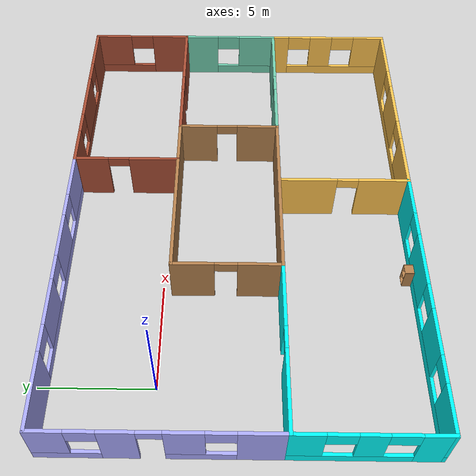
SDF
<sdf version="1.6">
 <world name="default">
  <model name="ground_plane">
   <static>1</static>
   <link name="link">
    <collision name="collision">
     <geometry><plane><normal>0 0 1</normal><size>100 100</size></plane></geometry>
     <surface><friction><ode><mu>100</mu><mu2>50</mu2></ode></friction></surface>
    </collision>
    <visual name="visual">
     <cast_shadows>0</cast_shadows>
     <geometry><plane><normal>0 0 1</normal><size>100 100</size></plane></geometry>
     <material>
      <script><uri>file://media/materials/scripts/gazebo.material</uri><name>Gazebo/Grey</name></script>
     </material>
    </visual>
   </link>
  </model>
  <model name="prj1_building">
   <pose>8.66676 -3.41267 0 0 -0 0</pose>
   <link name="Wall_0">
    <collision name="Wall_0_Collision">
     <geometry><box><size>8.5 0.15 2.5</size></box></geometry>
     <pose>0 0 1.25 0 -0 0</pose>
    </collision>
    <visual name="Wall_0_Visual">
     <pose>0 0 1.25 0 -0 0</pose>
     <geometry><box><size>8.5 0.15 2.5</size></box></geometry>
     <material>
      <script><uri>file://media/materials/scripts/gazebo.material</uri><name>Gazebo/Wood</name></script>
      <ambient>1 1 1 1</ambient>
     </material>
     <meta><layer>0</layer></meta>
    </visual>
    <pose>0.2 -1.875 0 0 -0 0</pose>
   </link>
   <link name="Wall_13">
    <pose>11.475 5.46466 0 0 -0 1.5708</pose>
    <visual name="Wall_13_Visual_0">
     <pose>-1.56923 0 1.25 0 -0 0</pose>
     <geometry><box><size>1.99086 0.15 2.5</size></box></geometry>
     <material>
      <script><uri>file://media/materials/scripts/gazebo.material</uri><name>Gazebo/Bricks</name></script>
      <ambient>1 1 1 1</ambient>
     </material>
     <meta><layer>0</layer></meta>
    </visual>
    <collision name="Wall_13_Collision_0">
     <geometry><box><size>1.99086 0.15 2.5</size></box></geometry>
     <pose>-1.56923 0 1.25 0 -0 0</pose>
    </collision>
    <visual name="Wall_13_Visual_1">
     <pose>0.995431 0 0.25 0 -0 0</pose>
     <geometry><box><size>3.13846 0.15 0.5</size></box></geometry>
     <material>
      <script><uri>file://media/materials/scripts/gazebo.material</uri><name>Gazebo/Bricks</name></script>
      <ambient>1 1 1 1</ambient>
     </material>
     <meta><layer>0</layer></meta>
    </visual>
    <collision name="Wall_13_Collision_1">
     <geometry><box><size>3.13846 0.15 0.5</size></box></geometry>
     <pose>0.995431 0 0.25 0 -0 0</pose>
    </collision>
    <visual name="Wall_13_Visual_2">
     <pose>1.59543 0 1.5 0 -0 0</pose>
     <geometry><box><size>1.93846 0.15 2</size></box></geometry>
     <material>
      <script><uri>file://media/materials/scripts/gazebo.material</uri><name>Gazebo/Bricks</name></script>
      <ambient>1 1 1 1</ambient>
     </material>
     <meta><layer>0</layer></meta>
    </visual>
    <collision name="Wall_13_Collision_2">
     <geometry><box><size>1.93846 0.15 2</size></box></geometry>
     <pose>1.59543 0 1.5 0 -0 0</pose>
    </collision>
    <visual name="Wall_13_Visual_3">
     <pose>0.026202 0 2.1 0 -0 0</pose>
     <geometry><box><size>1.2 0.15 0.8</size></box></geometry>
     <material>
      <script><uri>file://media/materials/scripts/gazebo.material</uri><name>Gazebo/Bricks</name></script>
      <ambient>1 1 1 1</ambient>
     </material>
     <meta><layer>0</layer></meta>
    </visual>
    <collision name="Wall_13_Collision_3">
     <geometry><box><size>1.2 0.15 0.8</size></box></geometry>
     <pose>0.026202 0 2.1 0 -0 0</pose>
    </collision>
   </link>
   <link name="Wall_14">
    <pose>6.8 7.97443 0 0 -0 3.14159</pose>
    <visual name="Wall_14_Visual_0">
     <pose>-3.50992 0 1.25 0 -0 0</pose>
     <geometry><box><size>2.48016 0.15 2.5</size></box></geometry>
     <material>
      <script><uri>file://media/materials/scripts/gazebo.material</uri><name>Gazebo/Bricks</name></script>
      <ambient>1 1 1 1</ambient>
     </material>
     <meta><layer>0</layer></meta>
    </visual>
    <collision name="Wall_14_Collision_0">
     <geometry><box><size>2.48016 0.15 2.5</size></box></geometry>
     <pose>-3.50992 0 1.25 0 -0 0</pose>
    </collision>
    <visual name="Wall_14_Visual_1">
     <pose>1.24008 0 0.25 0 -0 0</pose>
     <geometry><box><size>7.01984 0.15 0.5</size></box></geometry>
     <material>
      <script><uri>file://media/materials/scripts/gazebo.material</uri><name>Gazebo/Bricks</name></script>
      <ambient>1 1 1 1</ambient>
     </material>
     <meta><layer>0</layer></meta>
    </visual>
    <collision name="Wall_14_Collision_1">
     <geometry><box><size>7.01984 0.15 0.5</size></box></geometry>
     <pose>1.24008 0 0.25 0 -0 0</pose>
    </collision>
    <visual name="Wall_14_Visual_2">
     <pose>0.282584 0 1.5 0 -0 0</pose>
     <geometry><box><size>2.70484 0.15 2</size></box></geometry>
     <material>
      <script><uri>file://media/materials/scripts/gazebo.material</uri><name>Gazebo/Bricks</name></script>
      <ambient>1 1 1 1</ambient>
     </material>
     <meta><layer>0</layer></meta>
    </visual>
    <collision name="Wall_14_Collision_2">
     <geometry><box><size>2.70484 0.15 2</size></box></geometry>
     <pose>0.282584 0 1.5 0 -0 0</pose>
    </collision>
    <visual name="Wall_14_Visual_3">
     <pose>3.7925 0 1.5 0 -0 0</pose>
     <geometry><box><size>1.915 0.15 2</size></box></geometry>
     <material>
      <script><uri>file://media/materials/scripts/gazebo.material</uri><name>Gazebo/Bricks</name></script>
      <ambient>1 1 1 1</ambient>
     </material>
     <meta><layer>0</layer></meta>
    </visual>
    <collision name="Wall_14_Collision_3">
     <geometry><box><size>1.915 0.15 2</size></box></geometry>
     <pose>3.7925 0 1.5 0 -0 0</pose>
    </collision>
    <visual name="Wall_14_Visual_4">
     <pose>-1.66984 0 2.1 0 -0 0</pose>
     <geometry><box><size>1.2 0.15 0.8</size></box></geometry>
     <material>
      <script><uri>file://media/materials/scripts/gazebo.material</uri><name>Gazebo/Bricks</name></script>
      <ambient>1 1 1 1</ambient>
     </material>
     <meta><layer>0</layer></meta>
    </visual>
    <collision name="Wall_14_Collision_4">
     <geometry><box><size>1.2 0.15 0.8</size></box></geometry>
     <pose>-1.66984 0 2.1 0 -0 0</pose>
    </collision>
    <visual name="Wall_14_Visual_5">
     <pose>2.23501 0 2.1 0 -0 0</pose>
     <geometry><box><size>1.2 0.15 0.8</size></box></geometry>
     <material>
      <script><uri>file://media/materials/scripts/gazebo.material</uri><name>Gazebo/Bricks</name></script>
      <ambient>1 1 1 1</ambient>
     </material>
     <meta><layer>0</layer></meta>
    </visual>
    <collision name="Wall_14_Collision_5">
     <geometry><box><size>1.2 0.15 0.8</size></box></geometry>
     <pose>2.23501 0 2.1 0 -0 0</pose>
    </collision>
   </link>
   <link name="Wall_15">
    <pose>2.125 5.46466 0 0 -0 -1.5708</pose>
    <visual name="Wall_15_Visual_0">
     <pose>-1.72519 0 1.25 0 -0 0</pose>
     <geometry><box><size>1.67895 0.15 2.5</size></box></geometry>
     <material>
      <script><uri>file://media/materials/scripts/gazebo.material</uri><name>Gazebo/Bricks</name></script>
      <ambient>1 1 1 1</ambient>
     </material>
     <meta><layer>0</layer></meta>
    </visual>
    <collision name="Wall_15_Collision_0">
     <geometry><box><size>1.67895 0.15 2.5</size></box></geometry>
     <pose>-1.72519 0 1.25 0 -0 0</pose>
    </collision>
    <visual name="Wall_15_Visual_1">
     <pose>1.33947 0 1.25 0 -0 0</pose>
     <geometry><box><size>2.45037 0.15 2.5</size></box></geometry>
     <material>
      <script><uri>file://media/materials/scripts/gazebo.material</uri><name>Gazebo/Bricks</name></script>
      <ambient>1 1 1 1</ambient>
     </material>
     <meta><layer>0</layer></meta>
    </visual>
    <collision name="Wall_15_Collision_1">
     <geometry><box><size>2.45037 0.15 2.5</size></box></geometry>
     <pose>1.33947 0 1.25 0 -0 0</pose>
    </collision>
    <visual name="Wall_15_Visual_2">
     <pose>-0.385714 0 2.25 0 -0 0</pose>
     <geometry><box><size>1 0.15 0.5</size></box></geometry>
     <material>
      <script><uri>file://media/materials/scripts/gazebo.material</uri><name>Gazebo/Bricks</name></script>
      <ambient>1 1 1 1</ambient>
     </material>
     <meta><layer>0</layer></meta>
    </visual>
    <collision name="Wall_15_Collision_2">
     <geometry><box><size>1 0.15 0.5</size></box></geometry>
     <pose>-0.385714 0 2.25 0 -0 0</pose>
    </collision>
   </link>
   <link name="Wall_2">
    <pose>-3.975 0.55 0 0 -0 1.5708</pose>
    <visual name="Wall_2_Visual_0">
     <pose>-1.47865 0 1.25 0 -0 0</pose>
     <geometry><box><size>2.0427 0.15 2.5</size></box></geometry>
     <material>
      <script><uri>file://media/materials/scripts/gazebo.material</uri><name>Gazebo/Wood</name></script>
      <ambient>1 1 1 1</ambient>
     </material>
     <meta><layer>0</layer></meta>
    </visual>
    <collision name="Wall_2_Collision_0">
     <geometry><box><size>2.0427 0.15 2.5</size></box></geometry>
     <pose>-1.47865 0 1.25 0 -0 0</pose>
    </collision>
    <visual name="Wall_2_Visual_1">
     <pose>1.52135 0 1.25 0 -0 0</pose>
     <geometry><box><size>1.9573 0.15 2.5</size></box></geometry>
     <material>
      <script><uri>file://media/materials/scripts/gazebo.material</uri><name>Gazebo/Wood</name></script>
      <ambient>1 1 1 1</ambient>
     </material>
     <meta><layer>0</layer></meta>
    </visual>
    <collision name="Wall_2_Collision_1">
     <geometry><box><size>1.9573 0.15 2.5</size></box></geometry>
     <pose>1.52135 0 1.25 0 -0 0</pose>
    </collision>
    <visual name="Wall_2_Visual_2">
     <pose>0.042704 0 2.25 0 -0 0</pose>
     <geometry><box><size>1 0.15 0.5</size></box></geometry>
     <material>
      <script><uri>file://media/materials/scripts/gazebo.material</uri><name>Gazebo/Wood</name></script>
      <ambient>1 1 1 1</ambient>
     </material>
     <meta><layer>0</layer></meta>
    </visual>
    <collision name="Wall_2_Collision_2">
     <geometry><box><size>1 0.15 0.5</size></box></geometry>
     <pose>0.042704 0 2.25 0 -0 0</pose>
    </collision>
   </link>
   <link name="Wall_25">
    <pose>11.475 0.55 0 0 -0 -1.5708</pose>
    <visual name="Wall_25_Visual_0">
     <pose>-1.58607 0 1.25 0 -0 0</pose>
     <geometry><box><size>1.82787 0.15 2.5</size></box></geometry>
     <material>
      <script><uri>file://media/materials/scripts/gazebo.material</uri><name>Gazebo/Grey</name></script>
      <ambient>0.435294 0.796078 0.67451 1</ambient>
     </material>
     <meta><layer>0</layer></meta>
    </visual>
    <collision name="Wall_25_Collision_0">
     <geometry><box><size>1.82787 0.15 2.5</size></box></geometry>
     <pose>-1.58607 0 1.25 0 -0 0</pose>
    </collision>
    <visual name="Wall_25_Visual_1">
     <pose>0.913933 0 0.25 0 -0 0</pose>
     <geometry><box><size>3.17213 0.15 0.5</size></box></geometry>
     <material>
      <script><uri>file://media/materials/scripts/gazebo.material</uri><name>Gazebo/Grey</name></script>
      <ambient>0.435294 0.796078 0.67451 1</ambient>
     </material>
     <meta><layer>0</layer></meta>
    </visual>
    <collision name="Wall_25_Collision_1">
     <geometry><box><size>3.17213 0.15 0.5</size></box></geometry>
     <pose>0.913933 0 0.25 0 -0 0</pose>
    </collision>
    <visual name="Wall_25_Visual_2">
     <pose>1.51393 0 1.5 0 -0 0</pose>
     <geometry><box><size>1.97213 0.15 2</size></box></geometry>
     <material>
      <script><uri>file://media/materials/scripts/gazebo.material</uri><name>Gazebo/Grey</name></script>
      <ambient>0.435294 0.796078 0.67451 1</ambient>
     </material>
     <meta><layer>0</layer></meta>
    </visual>
    <collision name="Wall_25_Collision_2">
     <geometry><box><size>1.97213 0.15 2</size></box></geometry>
     <pose>1.51393 0 1.5 0 -0 0</pose>
    </collision>
    <visual name="Wall_25_Visual_3">
     <pose>-0.072133 0 2.1 0 -0 0</pose>
     <geometry><box><size>1.2 0.15 0.8</size></box></geometry>
     <material>
      <script><uri>file://media/materials/scripts/gazebo.material</uri><name>Gazebo/Grey</name></script>
      <ambient>0.435294 0.796078 0.67451 1</ambient>
     </material>
     <meta><layer>0</layer></meta>
    </visual>
    <collision name="Wall_25_Collision_3">
     <geometry><box><size>1.2 0.15 0.8</size></box></geometry>
     <pose>-0.072133 0 2.1 0 -0 0</pose>
    </collision>
   </link>
   <link name="Wall_26">
    <pose>7.925 -1.875 0 0 -0 3.14159</pose>
    <visual name="Wall_26_Visual_0">
     <pose>-1.93285 0 1.25 0 -0 0</pose>
     <geometry><box><size>3.3843 0.15 2.5</size></box></geometry>
     <material>
      <script><uri>file://media/materials/scripts/gazebo.material</uri><name>Gazebo/Grey</name></script>
      <ambient>0.435294 0.796078 0.67451 1</ambient>
     </material>
     <meta><layer>0</layer></meta>
    </visual>
    <collision name="Wall_26_Collision_0">
     <geometry><box><size>3.3843 0.15 2.5</size></box></geometry>
     <pose>-1.93285 0 1.25 0 -0 0</pose>
    </collision>
    <visual name="Wall_26_Visual_1">
     <pose>2.19215 0 1.25 0 -0 0</pose>
     <geometry><box><size>2.8657 0.15 2.5</size></box></geometry>
     <material>
      <script><uri>file://media/materials/scripts/gazebo.material</uri><name>Gazebo/Grey</name></script>
      <ambient>0.435294 0.796078 0.67451 1</ambient>
     </material>
     <meta><layer>0</layer></meta>
    </visual>
    <collision name="Wall_26_Collision_1">
     <geometry><box><size>2.8657 0.15 2.5</size></box></geometry>
     <pose>2.19215 0 1.25 0 -0 0</pose>
    </collision>
    <visual name="Wall_26_Visual_2">
     <pose>0.259305 0 2.25 0 -0 0</pose>
     <geometry><box><size>1 0.15 0.5</size></box></geometry>
     <material>
      <script><uri>file://media/materials/scripts/gazebo.material</uri><name>Gazebo/Grey</name></script>
      <ambient>0.435294 0.796078 0.67451 1</ambient>
     </material>
     <meta><layer>0</layer></meta>
    </visual>
    <collision name="Wall_26_Collision_2">
     <geometry><box><size>1 0.15 0.5</size></box></geometry>
     <pose>0.259305 0 2.25 0 -0 0</pose>
    </collision>
   </link>
   <link name="Wall_28">
    <pose>11.475 -4.925 0 0 -0 -1.5708</pose>
    <visual name="Wall_28_Visual_0">
     <pose>-2.63878 0 1.25 0 -0 0</pose>
     <geometry><box><size>0.972448 0.15 2.5</size></box></geometry>
     <material>
      <script><uri>file://media/materials/scripts/gazebo.material</uri><name>Gazebo/Grey</name></script>
      <ambient>1 0.764706 0.305882 1</ambient>
     </material>
     <meta><layer>0</layer></meta>
    </visual>
    <collision name="Wall_28_Collision_0">
     <geometry><box><size>0.972448 0.15 2.5</size></box></geometry>
     <pose>-2.63878 0 1.25 0 -0 0</pose>
    </collision>
    <visual name="Wall_28_Visual_1">
     <pose>0.486224 0 0.25 0 -0 0</pose>
     <geometry><box><size>5.27755 0.15 0.5</size></box></geometry>
     <material>
      <script><uri>file://media/materials/scripts/gazebo.material</uri><name>Gazebo/Grey</name></script>
      <ambient>1 0.764706 0.305882 1</ambient>
     </material>
     <meta><layer>0</layer></meta>
    </visual>
    <collision name="Wall_28_Collision_1">
     <geometry><box><size>5.27755 0.15 0.5</size></box></geometry>
     <pose>0.486224 0 0.25 0 -0 0</pose>
    </collision>
    <visual name="Wall_28_Visual_2">
     <pose>-0.344238 0 1.5 0 -0 0</pose>
     <geometry><box><size>1.21663 0.15 2</size></box></geometry>
     <material>
      <script><uri>file://media/materials/scripts/gazebo.material</uri><name>Gazebo/Grey</name></script>
      <ambient>1 0.764706 0.305882 1</ambient>
     </material>
     <meta><layer>0</layer></meta>
    </visual>
    <collision name="Wall_28_Collision_2">
     <geometry><box><size>1.21663 0.15 2</size></box></geometry>
     <pose>-0.344238 0 1.5 0 -0 0</pose>
    </collision>
    <visual name="Wall_28_Visual_3">
     <pose>2.29454 0 1.5 0 -0 0</pose>
     <geometry><box><size>1.66092 0.15 2</size></box></geometry>
     <material>
      <script><uri>file://media/materials/scripts/gazebo.material</uri><name>Gazebo/Grey</name></script>
      <ambient>1 0.764706 0.305882 1</ambient>
     </material>
     <meta><layer>0</layer></meta>
    </visual>
    <collision name="Wall_28_Collision_3">
     <geometry><box><size>1.66092 0.15 2</size></box></geometry>
     <pose>2.29454 0 1.5 0 -0 0</pose>
    </collision>
    <visual name="Wall_28_Visual_4">
     <pose>-1.55255 0 2.1 0 -0 0</pose>
     <geometry><box><size>1.2 0.15 0.8</size></box></geometry>
     <material>
      <script><uri>file://media/materials/scripts/gazebo.material</uri><name>Gazebo/Grey</name></script>
      <ambient>1 0.764706 0.305882 1</ambient>
     </material>
     <meta><layer>0</layer></meta>
    </visual>
    <collision name="Wall_28_Collision_4">
     <geometry><box><size>1.2 0.15 0.8</size></box></geometry>
     <pose>-1.55255 0 2.1 0 -0 0</pose>
    </collision>
    <visual name="Wall_28_Visual_5">
     <pose>0.864076 0 2.1 0 -0 0</pose>
     <geometry><box><size>1.2 0.15 0.8</size></box></geometry>
     <material>
      <script><uri>file://media/materials/scripts/gazebo.material</uri><name>Gazebo/Grey</name></script>
      <ambient>1 0.764706 0.305882 1</ambient>
     </material>
     <meta><layer>0</layer></meta>
    </visual>
    <collision name="Wall_28_Collision_5">
     <geometry><box><size>1.2 0.15 0.8</size></box></geometry>
     <pose>0.864076 0 2.1 0 -0 0</pose>
    </collision>
   </link>
   <link name="Wall_34">
    <pose>6.175 -7.975 0 0 -0 3.14159</pose>
    <visual name="Wall_34_Visual_0">
     <pose>-3.92525 0 1.25 0 -0 0</pose>
     <geometry><box><size>2.89949 0.15 2.5</size></box></geometry>
     <material>
      <script><uri>file://media/materials/scripts/gazebo.material</uri><name>Gazebo/Grey</name></script>
      <ambient>1 0.764706 0.305882 1</ambient>
     </material>
     <meta><layer>0</layer></meta>
    </visual>
    <collision name="Wall_34_Collision_0">
     <geometry><box><size>2.89949 0.15 2.5</size></box></geometry>
     <pose>-3.92525 0 1.25 0 -0 0</pose>
    </collision>
    <visual name="Wall_34_Visual_1">
     <pose>1.44975 0 0.25 0 -0 0</pose>
     <geometry><box><size>7.85051 0.15 0.5</size></box></geometry>
     <material>
      <script><uri>file://media/materials/scripts/gazebo.material</uri><name>Gazebo/Grey</name></script>
      <ambient>1 0.764706 0.305882 1</ambient>
     </material>
     <meta><layer>0</layer></meta>
    </visual>
    <collision name="Wall_34_Collision_1">
     <geometry><box><size>7.85051 0.15 0.5</size></box></geometry>
     <pose>1.44975 0 0.25 0 -0 0</pose>
    </collision>
    <visual name="Wall_34_Visual_2">
     <pose>0.023833 0 1.5 0 -0 0</pose>
     <geometry><box><size>2.59868 0.15 2</size></box></geometry>
     <material>
      <script><uri>file://media/materials/scripts/gazebo.material</uri><name>Gazebo/Grey</name></script>
      <ambient>1 0.764706 0.305882 1</ambient>
     </material>
     <meta><layer>0</layer></meta>
    </visual>
    <collision name="Wall_34_Collision_2">
     <geometry><box><size>2.59868 0.15 2</size></box></geometry>
     <pose>0.023833 0 1.5 0 -0 0</pose>
    </collision>
    <visual name="Wall_34_Visual_3">
     <pose>3.94909 0 1.5 0 -0 0</pose>
     <geometry><box><size>2.85183 0.15 2</size></box></geometry>
     <material>
      <script><uri>file://media/materials/scripts/gazebo.material</uri><name>Gazebo/Grey</name></script>
      <ambient>1 0.764706 0.305882 1</ambient>
     </material>
     <meta><layer>0</layer></meta>
    </visual>
    <collision name="Wall_34_Collision_3">
     <geometry><box><size>2.85183 0.15 2</size></box></geometry>
     <pose>3.94909 0 1.5 0 -0 0</pose>
    </collision>
    <visual name="Wall_34_Visual_4">
     <pose>-1.8755 0 2.1 0 -0 0</pose>
     <geometry><box><size>1.2 0.15 0.8</size></box></geometry>
     <material>
      <script><uri>file://media/materials/scripts/gazebo.material</uri><name>Gazebo/Grey</name></script>
      <ambient>1 0.764706 0.305882 1</ambient>
     </material>
     <meta><layer>0</layer></meta>
    </visual>
    <collision name="Wall_34_Collision_4">
     <geometry><box><size>1.2 0.15 0.8</size></box></geometry>
     <pose>-1.8755 0 2.1 0 -0 0</pose>
    </collision>
    <visual name="Wall_34_Visual_5">
     <pose>1.92317 0 2.1 0 -0 0</pose>
     <geometry><box><size>1.2 0.15 0.8</size></box></geometry>
     <material>
      <script><uri>file://media/materials/scripts/gazebo.material</uri><name>Gazebo/Grey</name></script>
      <ambient>1 0.764706 0.305882 1</ambient>
     </material>
     <meta><layer>0</layer></meta>
    </visual>
    <collision name="Wall_34_Collision_5">
     <geometry><box><size>1.2 0.15 0.8</size></box></geometry>
     <pose>1.92317 0 2.1 0 -0 0</pose>
    </collision>
   </link>
   <link name="Wall_35">
    <pose>0.875 -4.925 0 0 -0 1.5708</pose>
    <visual name="Wall_35_Visual_0">
     <pose>-1.90603 0 1.25 0 -0 0</pose>
     <geometry><box><size>2.43795 0.15 2.5</size></box></geometry>
     <material>
      <script><uri>file://media/materials/scripts/gazebo.material</uri><name>Gazebo/Grey</name></script>
      <ambient>1 0.764706 0.305882 1</ambient>
     </material>
     <meta><layer>0</layer></meta>
    </visual>
    <collision name="Wall_35_Collision_0">
     <geometry><box><size>2.43795 0.15 2.5</size></box></geometry>
     <pose>-1.90603 0 1.25 0 -0 0</pose>
    </collision>
    <visual name="Wall_35_Visual_1">
     <pose>1.71897 0 1.25 0 -0 0</pose>
     <geometry><box><size>2.81205 0.15 2.5</size></box></geometry>
     <material>
      <script><uri>file://media/materials/scripts/gazebo.material</uri><name>Gazebo/Grey</name></script>
      <ambient>1 0.764706 0.305882 1</ambient>
     </material>
     <meta><layer>0</layer></meta>
    </visual>
    <collision name="Wall_35_Collision_1">
     <geometry><box><size>2.81205 0.15 2.5</size></box></geometry>
     <pose>1.71897 0 1.25 0 -0 0</pose>
    </collision>
    <visual name="Wall_35_Visual_2">
     <pose>-0.187052 0 2.25 0 -0 0</pose>
     <geometry><box><size>1 0.15 0.5</size></box></geometry>
     <material>
      <script><uri>file://media/materials/scripts/gazebo.material</uri><name>Gazebo/Grey</name></script>
      <ambient>1 0.764706 0.305882 1</ambient>
     </material>
     <meta><layer>0</layer></meta>
    </visual>
    <collision name="Wall_35_Collision_2">
     <geometry><box><size>1 0.15 0.5</size></box></geometry>
     <pose>-0.187052 0 2.25 0 -0 0</pose>
    </collision>
   </link>
   <link name="Wall_37">
    <pose>-5.3 -7.975 0 0 -0 3.14159</pose>
    <visual name="Wall_37_Visual_0">
     <pose>-5.23153 0 1.25 0 -0 0</pose>
     <geometry><box><size>2.03695 0.15 2.5</size></box></geometry>
     <material>
      <script><uri>file://media/materials/scripts/gazebo.material</uri><name>Gazebo/Grey</name></script>
      <ambient>0 1 1 1</ambient>
     </material>
     <meta><layer>0</layer></meta>
    </visual>
    <collision name="Wall_37_Collision_0">
     <geometry><box><size>2.03695 0.15 2.5</size></box></geometry>
     <pose>-5.23153 0 1.25 0 -0 0</pose>
    </collision>
    <visual name="Wall_37_Visual_1">
     <pose>1.01848 0 0.25 0 -0 0</pose>
     <geometry><box><size>10.4631 0.15 0.5</size></box></geometry>
     <material>
      <script><uri>file://media/materials/scripts/gazebo.material</uri><name>Gazebo/Grey</name></script>
      <ambient>0 1 1 1</ambient>
     </material>
     <meta><layer>0</layer></meta>
    </visual>
    <collision name="Wall_37_Collision_1">
     <geometry><box><size>10.4631 0.15 0.5</size></box></geometry>
     <pose>1.01848 0 0.25 0 -0 0</pose>
    </collision>
    <visual name="Wall_37_Visual_2">
     <pose>-1.71371 0 1.5 0 -0 0</pose>
     <geometry><box><size>2.59868 0.15 2</size></box></geometry>
     <material>
      <script><uri>file://media/materials/scripts/gazebo.material</uri><name>Gazebo/Grey</name></script>
      <ambient>0 1 1 1</ambient>
     </material>
     <meta><layer>0</layer></meta>
    </visual>
    <collision name="Wall_37_Collision_2">
     <geometry><box><size>2.59868 0.15 2</size></box></geometry>
     <pose>-1.71371 0 1.5 0 -0 0</pose>
    </collision>
    <visual name="Wall_37_Visual_3">
     <pose>1.84421 0 1.5 0 -0 0</pose>
     <geometry><box><size>2.11715 0.15 2</size></box></geometry>
     <material>
      <script><uri>file://media/materials/scripts/gazebo.material</uri><name>Gazebo/Grey</name></script>
      <ambient>0 1 1 1</ambient>
     </material>
     <meta><layer>0</layer></meta>
    </visual>
    <collision name="Wall_37_Collision_3">
     <geometry><box><size>2.11715 0.15 2</size></box></geometry>
     <pose>1.84421 0 1.5 0 -0 0</pose>
    </collision>
    <visual name="Wall_37_Visual_4">
     <pose>5.17639 0 1.5 0 -0 0</pose>
     <geometry><box><size>2.14722 0.15 2</size></box></geometry>
     <material>
      <script><uri>file://media/materials/scripts/gazebo.material</uri><name>Gazebo/Grey</name></script>
      <ambient>0 1 1 1</ambient>
     </material>
     <meta><layer>0</layer></meta>
    </visual>
    <collision name="Wall_37_Collision_4">
     <geometry><box><size>2.14722 0.15 2</size></box></geometry>
     <pose>5.17639 0 1.5 0 -0 0</pose>
    </collision>
    <visual name="Wall_37_Visual_5">
     <pose>-3.61305 0 2.1 0 -0 0</pose>
     <geometry><box><size>1.2 0.15 0.8</size></box></geometry>
     <material>
      <script><uri>file://media/materials/scripts/gazebo.material</uri><name>Gazebo/Grey</name></script>
      <ambient>0 1 1 1</ambient>
     </material>
     <meta><layer>0</layer></meta>
    </visual>
    <collision name="Wall_37_Collision_5">
     <geometry><box><size>1.2 0.15 0.8</size></box></geometry>
     <pose>-3.61305 0 2.1 0 -0 0</pose>
    </collision>
    <visual name="Wall_37_Visual_6">
     <pose>0.185627 0 2.1 0 -0 0</pose>
     <geometry><box><size>1.2 0.15 0.8</size></box></geometry>
     <material>
      <script><uri>file://media/materials/scripts/gazebo.material</uri><name>Gazebo/Grey</name></script>
      <ambient>0 1 1 1</ambient>
     </material>
     <meta><layer>0</layer></meta>
    </visual>
    <collision name="Wall_37_Collision_6">
     <geometry><box><size>1.2 0.15 0.8</size></box></geometry>
     <pose>0.185627 0 2.1 0 -0 0</pose>
    </collision>
    <visual name="Wall_37_Visual_7">
     <pose>3.50278 0 2.1 0 -0 0</pose>
     <geometry><box><size>1.2 0.15 0.8</size></box></geometry>
     <material>
      <script><uri>file://media/materials/scripts/gazebo.material</uri><name>Gazebo/Grey</name></script>
      <ambient>0 1 1 1</ambient>
     </material>
     <meta><layer>0</layer></meta>
    </visual>
    <collision name="Wall_37_Collision_7">
     <geometry><box><size>1.2 0.15 0.8</size></box></geometry>
     <pose>3.50278 0 2.1 0 -0 0</pose>
    </collision>
   </link>
   <link name="Wall_38">
    <pose>-11.475 -4.925 0 0 -0 1.5708</pose>
    <visual name="Wall_38_Visual_0">
     <pose>-2.47808 0 1.25 0 -0 0</pose>
     <geometry><box><size>1.29384 0.15 2.5</size></box></geometry>
     <material>
      <script><uri>file://media/materials/scripts/gazebo.material</uri><name>Gazebo/Grey</name></script>
      <ambient>0 1 1 1</ambient>
     </material>
     <meta><layer>0</layer></meta>
    </visual>
    <collision name="Wall_38_Collision_0">
     <geometry><box><size>1.29384 0.15 2.5</size></box></geometry>
     <pose>-2.47808 0 1.25 0 -0 0</pose>
    </collision>
    <visual name="Wall_38_Visual_1">
     <pose>0.646921 0 0.25 0 -0 0</pose>
     <geometry><box><size>4.95616 0.15 0.5</size></box></geometry>
     <material>
      <script><uri>file://media/materials/scripts/gazebo.material</uri><name>Gazebo/Grey</name></script>
      <ambient>0 1 1 1</ambient>
     </material>
     <meta><layer>0</layer></meta>
    </visual>
    <collision name="Wall_38_Collision_1">
     <geometry><box><size>4.95616 0.15 0.5</size></box></geometry>
     <pose>0.646921 0 0.25 0 -0 0</pose>
    </collision>
    <visual name="Wall_38_Visual_2">
     <pose>-0.053435 0 1.5 0 -0 0</pose>
     <geometry><box><size>1.15545 0.15 2</size></box></geometry>
     <material>
      <script><uri>file://media/materials/scripts/gazebo.material</uri><name>Gazebo/Grey</name></script>
      <ambient>0 1 1 1</ambient>
     </material>
     <meta><layer>0</layer></meta>
    </visual>
    <collision name="Wall_38_Collision_2">
     <geometry><box><size>1.15545 0.15 2</size></box></geometry>
     <pose>-0.053435 0 1.5 0 -0 0</pose>
    </collision>
    <visual name="Wall_38_Visual_3">
     <pose>2.42464 0 1.5 0 -0 0</pose>
     <geometry><box><size>1.40071 0.15 2</size></box></geometry>
     <material>
      <script><uri>file://media/materials/scripts/gazebo.material</uri><name>Gazebo/Grey</name></script>
      <ambient>0 1 1 1</ambient>
     </material>
     <meta><layer>0</layer></meta>
    </visual>
    <collision name="Wall_38_Collision_3">
     <geometry><box><size>1.40071 0.15 2</size></box></geometry>
     <pose>2.42464 0 1.5 0 -0 0</pose>
    </collision>
    <visual name="Wall_38_Visual_4">
     <pose>-1.23116 0 2.1 0 -0 0</pose>
     <geometry><box><size>1.2 0.15 0.8</size></box></geometry>
     <material>
      <script><uri>file://media/materials/scripts/gazebo.material</uri><name>Gazebo/Grey</name></script>
      <ambient>0 1 1 1</ambient>
     </material>
     <meta><layer>0</layer></meta>
    </visual>
    <collision name="Wall_38_Collision_4">
     <geometry><box><size>1.2 0.15 0.8</size></box></geometry>
     <pose>-1.23116 0 2.1 0 -0 0</pose>
    </collision>
    <visual name="Wall_38_Visual_5">
     <pose>1.12429 0 2.1 0 -0 0</pose>
     <geometry><box><size>1.2 0.15 0.8</size></box></geometry>
     <material>
      <script><uri>file://media/materials/scripts/gazebo.material</uri><name>Gazebo/Grey</name></script>
      <ambient>0 1 1 1</ambient>
     </material>
     <meta><layer>0</layer></meta>
    </visual>
    <collision name="Wall_38_Collision_5">
     <geometry><box><size>1.2 0.15 0.8</size></box></geometry>
     <pose>1.12429 0 2.1 0 -0 0</pose>
    </collision>
   </link>
   <link name="Wall_39">
    <pose>-7.725 -1.875 0 0 -0 0</pose>
    <visual name="Wall_39_Visual_0">
     <pose>-2.03776 0 1.25 0 -0 0</pose>
     <geometry><box><size>3.57449 0.15 2.5</size></box></geometry>
     <material>
      <script><uri>file://media/materials/scripts/gazebo.material</uri><name>Gazebo/Grey</name></script>
      <ambient>0 1 1 1</ambient>
     </material>
     <meta><layer>0</layer></meta>
    </visual>
    <collision name="Wall_39_Collision_0">
     <geometry><box><size>3.57449 0.15 2.5</size></box></geometry>
     <pose>-2.03776 0 1.25 0 -0 0</pose>
    </collision>
    <visual name="Wall_39_Visual_1">
     <pose>2.28724 0 1.25 0 -0 0</pose>
     <geometry><box><size>3.07551 0.15 2.5</size></box></geometry>
     <material>
      <script><uri>file://media/materials/scripts/gazebo.material</uri><name>Gazebo/Grey</name></script>
      <ambient>0 1 1 1</ambient>
     </material>
     <meta><layer>0</layer></meta>
    </visual>
    <collision name="Wall_39_Collision_1">
     <geometry><box><size>3.07551 0.15 2.5</size></box></geometry>
     <pose>2.28724 0 1.25 0 -0 0</pose>
    </collision>
    <visual name="Wall_39_Visual_2">
     <pose>0.249486 0 2.25 0 -0 0</pose>
     <geometry><box><size>1 0.15 0.5</size></box></geometry>
     <material>
      <script><uri>file://media/materials/scripts/gazebo.material</uri><name>Gazebo/Grey</name></script>
      <ambient>0 1 1 1</ambient>
     </material>
     <meta><layer>0</layer></meta>
    </visual>
    <collision name="Wall_39_Collision_2">
     <geometry><box><size>1 0.15 0.5</size></box></geometry>
     <pose>0.249486 0 2.25 0 -0 0</pose>
    </collision>
   </link>
   <link name="Wall_41">
    <pose>-11.475 3.05 0 0 -0 1.5708</pose>
    <visual name="Wall_41_Visual_0">
     <pose>-3.98718 0 1.25 0 -0 0</pose>
     <geometry><box><size>2.02564 0.15 2.5</size></box></geometry>
     <material>
      <script><uri>file://media/materials/scripts/gazebo.material</uri><name>Gazebo/Grey</name></script>
      <ambient>0.666667 0.666667 1 1</ambient>
     </material>
     <meta><layer>0</layer></meta>
    </visual>
    <collision name="Wall_41_Collision_0">
     <geometry><box><size>2.02564 0.15 2.5</size></box></geometry>
     <pose>-3.98718 0 1.25 0 -0 0</pose>
    </collision>
    <visual name="Wall_41_Visual_1">
     <pose>1.53482 0 1.25 0 -0 0</pose>
     <geometry><box><size>1.46812 0.15 2.5</size></box></geometry>
     <material>
      <script><uri>file://media/materials/scripts/gazebo.material</uri><name>Gazebo/Grey</name></script>
      <ambient>0.666667 0.666667 1 1</ambient>
     </material>
     <meta><layer>0</layer></meta>
    </visual>
    <collision name="Wall_41_Collision_1">
     <geometry><box><size>1.46812 0.15 2.5</size></box></geometry>
     <pose>1.53482 0 1.25 0 -0 0</pose>
    </collision>
    <visual name="Wall_41_Visual_2">
     <pose>-1.5868 0 0.25 0 -0 0</pose>
     <geometry><box><size>2.77513 0.15 0.5</size></box></geometry>
     <material>
      <script><uri>file://media/materials/scripts/gazebo.material</uri><name>Gazebo/Grey</name></script>
      <ambient>0.666667 0.666667 1 1</ambient>
     </material>
     <meta><layer>0</layer></meta>
    </visual>
    <collision name="Wall_41_Collision_2">
     <geometry><box><size>2.77513 0.15 0.5</size></box></geometry>
     <pose>-1.5868 0 0.25 0 -0 0</pose>
    </collision>
    <visual name="Wall_41_Visual_3">
     <pose>3.63444 0 0.25 0 -0 0</pose>
     <geometry><box><size>2.73112 0.15 0.5</size></box></geometry>
     <material>
      <script><uri>file://media/materials/scripts/gazebo.material</uri><name>Gazebo/Grey</name></script>
      <ambient>0.666667 0.666667 1 1</ambient>
     </material>
     <meta><layer>0</layer></meta>
    </visual>
    <collision name="Wall_41_Collision_3">
     <geometry><box><size>2.73112 0.15 0.5</size></box></geometry>
     <pose>3.63444 0 0.25 0 -0 0</pose>
    </collision>
    <visual name="Wall_41_Visual_4">
     <pose>-0.986802 0 1.5 0 -0 0</pose>
     <geometry><box><size>1.57513 0.15 2</size></box></geometry>
     <material>
      <script><uri>file://media/materials/scripts/gazebo.material</uri><name>Gazebo/Grey</name></script>
      <ambient>0.666667 0.666667 1 1</ambient>
     </material>
     <meta><layer>0</layer></meta>
    </visual>
    <collision name="Wall_41_Collision_4">
     <geometry><box><size>1.57513 0.15 2</size></box></geometry>
     <pose>-0.986802 0 1.5 0 -0 0</pose>
    </collision>
    <visual name="Wall_41_Visual_5">
     <pose>-0.986802 0 1.5 0 -0 0</pose>
     <geometry><box><size>1.57513 0.15 2</size></box></geometry>
     <material>
      <script><uri>file://media/materials/scripts/gazebo.material</uri><name>Gazebo/Grey</name></script>
      <ambient>0.666667 0.666667 1 1</ambient>
     </material>
     <meta><layer>0</layer></meta>
    </visual>
    <collision name="Wall_41_Collision_5">
     <geometry><box><size>1.57513 0.15 2</size></box></geometry>
     <pose>-0.986802 0 1.5 0 -0 0</pose>
    </collision>
    <visual name="Wall_41_Visual_6">
     <pose>4.23444 0 1.5 0 -0 0</pose>
     <geometry><box><size>1.53112 0.15 2</size></box></geometry>
     <material>
      <script><uri>file://media/materials/scripts/gazebo.material</uri><name>Gazebo/Grey</name></script>
      <ambient>0.666667 0.666667 1 1</ambient>
     </material>
     <meta><layer>0</layer></meta>
    </visual>
    <collision name="Wall_41_Collision_6">
     <geometry><box><size>1.53112 0.15 2</size></box></geometry>
     <pose>4.23444 0 1.5 0 -0 0</pose>
    </collision>
    <visual name="Wall_41_Visual_7">
     <pose>-2.37436 0 2.1 0 -0 0</pose>
     <geometry><box><size>1.2 0.15 0.8</size></box></geometry>
     <material>
      <script><uri>file://media/materials/scripts/gazebo.material</uri><name>Gazebo/Grey</name></script>
      <ambient>0.666667 0.666667 1 1</ambient>
     </material>
     <meta><layer>0</layer></meta>
    </visual>
    <collision name="Wall_41_Collision_7">
     <geometry><box><size>1.2 0.15 0.8</size></box></geometry>
     <pose>-2.37436 0 2.1 0 -0 0</pose>
    </collision>
    <visual name="Wall_41_Visual_8">
     <pose>2.86888 0 2.1 0 -0 0</pose>
     <geometry><box><size>1.2 0.15 0.8</size></box></geometry>
     <material>
      <script><uri>file://media/materials/scripts/gazebo.material</uri><name>Gazebo/Grey</name></script>
      <ambient>0.666667 0.666667 1 1</ambient>
     </material>
     <meta><layer>0</layer></meta>
    </visual>
    <collision name="Wall_41_Collision_8">
     <geometry><box><size>1.2 0.15 0.8</size></box></geometry>
     <pose>2.86888 0 2.1 0 -0 0</pose>
    </collision>
    <visual name="Wall_41_Visual_9">
     <pose>0.300761 0 2.25 0 -0 0</pose>
     <geometry><box><size>1 0.15 0.5</size></box></geometry>
     <material>
      <script><uri>file://media/materials/scripts/gazebo.material</uri><name>Gazebo/Grey</name></script>
      <ambient>0.666667 0.666667 1 1</ambient>
     </material>
     <meta><layer>0</layer></meta>
    </visual>
    <collision name="Wall_41_Collision_9">
     <geometry><box><size>1 0.15 0.5</size></box></geometry>
     <pose>0.300761 0 2.25 0 -0 0</pose>
    </collision>
    <visual name="Wall_41_Visual_10">
     <pose>0.300761 0 2.25 0 -0 0</pose>
     <geometry><box><size>1 0.15 0.5</size></box></geometry>
     <material>
      <script><uri>file://media/materials/scripts/gazebo.material</uri><name>Gazebo/Grey</name></script>
      <ambient>0.666667 0.666667 1 1</ambient>
     </material>
     <meta><layer>0</layer></meta>
    </visual>
    <collision name="Wall_41_Collision_10">
     <geometry><box><size>1 0.15 0.5</size></box></geometry>
     <pose>0.300761 0 2.25 0 -0 0</pose>
    </collision>
   </link>
   <link name="Wall_42">
    <pose>-4.675 7.975 0 0 -0 0</pose>
    <visual name="Wall_42_Visual_0">
     <pose>-5.22102 0 1.25 0 -0 0</pose>
     <geometry><box><size>3.30796 0.15 2.5</size></box></geometry>
     <material>
      <script><uri>file://media/materials/scripts/gazebo.material</uri><name>Gazebo/Grey</name></script>
      <ambient>0.666667 0.666667 1 1</ambient>
     </material>
     <meta><layer>0</layer></meta>
    </visual>
    <collision name="Wall_42_Collision_0">
     <geometry><box><size>3.30796 0.15 2.5</size></box></geometry>
     <pose>-5.22102 0 1.25 0 -0 0</pose>
    </collision>
    <visual name="Wall_42_Visual_1">
     <pose>1.65398 0 0.25 0 -0 0</pose>
     <geometry><box><size>10.442 0.15 0.5</size></box></geometry>
     <material>
      <script><uri>file://media/materials/scripts/gazebo.material</uri><name>Gazebo/Grey</name></script>
      <ambient>0.666667 0.666667 1 1</ambient>
     </material>
     <meta><layer>0</layer></meta>
    </visual>
    <collision name="Wall_42_Collision_1">
     <geometry><box><size>10.442 0.15 0.5</size></box></geometry>
     <pose>1.65398 0 0.25 0 -0 0</pose>
    </collision>
    <visual name="Wall_42_Visual_2">
     <pose>-1.26087 0 1.5 0 -0 0</pose>
     <geometry><box><size>2.21234 0.15 2</size></box></geometry>
     <material>
      <script><uri>file://media/materials/scripts/gazebo.material</uri><name>Gazebo/Grey</name></script>
      <ambient>0.666667 0.666667 1 1</ambient>
     </material>
     <meta><layer>0</layer></meta>
    </visual>
    <collision name="Wall_42_Collision_2">
     <geometry><box><size>2.21234 0.15 2</size></box></geometry>
     <pose>-1.26087 0 1.5 0 -0 0</pose>
    </collision>
    <visual name="Wall_42_Visual_3">
     <pose>2.16906 0 1.5 0 -0 0</pose>
     <geometry><box><size>2.24752 0.15 2</size></box></geometry>
     <material>
      <script><uri>file://media/materials/scripts/gazebo.material</uri><name>Gazebo/Grey</name></script>
      <ambient>0.666667 0.666667 1 1</ambient>
     </material>
     <meta><layer>0</layer></meta>
    </visual>
    <collision name="Wall_42_Collision_3">
     <geometry><box><size>2.24752 0.15 2</size></box></geometry>
     <pose>2.16906 0 1.5 0 -0 0</pose>
    </collision>
    <visual name="Wall_42_Visual_4">
     <pose>5.68391 0 1.5 0 -0 0</pose>
     <geometry><box><size>2.38218 0.15 2</size></box></geometry>
     <material>
      <script><uri>file://media/materials/scripts/gazebo.material</uri><name>Gazebo/Grey</name></script>
      <ambient>0.666667 0.666667 1 1</ambient>
     </material>
     <meta><layer>0</layer></meta>
    </visual>
    <collision name="Wall_42_Collision_4">
     <geometry><box><size>2.38218 0.15 2</size></box></geometry>
     <pose>5.68391 0 1.5 0 -0 0</pose>
    </collision>
    <visual name="Wall_42_Visual_5">
     <pose>-2.96704 0 2.1 0 -0 0</pose>
     <geometry><box><size>1.2 0.15 0.8</size></box></geometry>
     <material>
      <script><uri>file://media/materials/scripts/gazebo.material</uri><name>Gazebo/Grey</name></script>
      <ambient>0.666667 0.666667 1 1</ambient>
     </material>
     <meta><layer>0</layer></meta>
    </visual>
    <collision name="Wall_42_Collision_5">
     <geometry><box><size>1.2 0.15 0.8</size></box></geometry>
     <pose>-2.96704 0 2.1 0 -0 0</pose>
    </collision>
    <visual name="Wall_42_Visual_6">
     <pose>0.445304 0 2.1 0 -0 0</pose>
     <geometry><box><size>1.2 0.15 0.8</size></box></geometry>
     <material>
      <script><uri>file://media/materials/scripts/gazebo.material</uri><name>Gazebo/Grey</name></script>
      <ambient>0.666667 0.666667 1 1</ambient>
     </material>
     <meta><layer>0</layer></meta>
    </visual>
    <collision name="Wall_42_Collision_6">
     <geometry><box><size>1.2 0.15 0.8</size></box></geometry>
     <pose>0.445304 0 2.1 0 -0 0</pose>
    </collision>
    <visual name="Wall_42_Visual_7">
     <pose>3.89282 0 2.1 0 -0 0</pose>
     <geometry><box><size>1.2 0.15 0.8</size></box></geometry>
     <material>
      <script><uri>file://media/materials/scripts/gazebo.material</uri><name>Gazebo/Grey</name></script>
      <ambient>0.666667 0.666667 1 1</ambient>
     </material>
     <meta><layer>0</layer></meta>
    </visual>
    <collision name="Wall_42_Collision_7">
     <geometry><box><size>1.2 0.15 0.8</size></box></geometry>
     <pose>3.89282 0 2.1 0 -0 0</pose>
    </collision>
   </link>
   <link name="Wall_5">
    <collision name="Wall_5_Collision">
     <geometry><box><size>8.5 0.15 2.5</size></box></geometry>
     <pose>0 0 1.25 0 -0 0</pose>
    </collision>
    <visual name="Wall_5_Visual">
     <pose>0 0 1.25 0 -0 0</pose>
     <geometry><box><size>8.5 0.15 2.5</size></box></geometry>
     <material>
      <script><uri>file://media/materials/scripts/gazebo.material</uri><name>Gazebo/Wood</name></script>
      <ambient>1 1 1 1</ambient>
     </material>
     <meta><layer>0</layer></meta>
    </visual>
    <pose>0.2 2.975 0 0 -0 0</pose>
   </link>
   <link name="Wall_6">
    <pose>4.375 0.55 0 0 -0 -1.5708</pose>
    <visual name="Wall_6_Visual_0">
     <pose>-1.54147 0 1.25 0 -0 0</pose>
     <geometry><box><size>1.91707 0.15 2.5</size></box></geometry>
     <material>
      <script><uri>file://media/materials/scripts/gazebo.material</uri><name>Gazebo/Wood</name></script>
      <ambient>1 1 1 1</ambient>
     </material>
     <meta><layer>0</layer></meta>
    </visual>
    <collision name="Wall_6_Collision_0">
     <geometry><box><size>1.91707 0.15 2.5</size></box></geometry>
     <pose>-1.54147 0 1.25 0 -0 0</pose>
    </collision>
    <visual name="Wall_6_Visual_1">
     <pose>1.45853 0 1.25 0 -0 0</pose>
     <geometry><box><size>2.08293 0.15 2.5</size></box></geometry>
     <material>
      <script><uri>file://media/materials/scripts/gazebo.material</uri><name>Gazebo/Wood</name></script>
      <ambient>1 1 1 1</ambient>
     </material>
     <meta><layer>0</layer></meta>
    </visual>
    <collision name="Wall_6_Collision_1">
     <geometry><box><size>2.08293 0.15 2.5</size></box></geometry>
     <pose>1.45853 0 1.25 0 -0 0</pose>
    </collision>
    <visual name="Wall_6_Visual_2">
     <pose>-0.082931 0 2.25 0 -0 0</pose>
     <geometry><box><size>1 0.15 0.5</size></box></geometry>
     <material>
      <script><uri>file://media/materials/scripts/gazebo.material</uri><name>Gazebo/Wood</name></script>
      <ambient>1 1 1 1</ambient>
     </material>
     <meta><layer>0</layer></meta>
    </visual>
    <collision name="Wall_6_Collision_2">
     <geometry><box><size>1 0.15 0.5</size></box></geometry>
     <pose>-0.082931 0 2.25 0 -0 0</pose>
    </collision>
   </link>
   <link name="Wall_9">
    <pose>7.925 2.975 0 0 -0 3.14159</pose>
    <visual name="Wall_9_Visual_0">
     <pose>-1.89755 0 1.25 0 -0 0</pose>
     <geometry><box><size>3.45491 0.15 2.5</size></box></geometry>
     <material>
      <script><uri>file://media/materials/scripts/gazebo.material</uri><name>Gazebo/Bricks</name></script>
      <ambient>1 1 1 1</ambient>
     </material>
     <meta><layer>0</layer></meta>
    </visual>
    <collision name="Wall_9_Collision_0">
     <geometry><box><size>3.45491 0.15 2.5</size></box></geometry>
     <pose>-1.89755 0 1.25 0 -0 0</pose>
    </collision>
    <visual name="Wall_9_Visual_1">
     <pose>2.22745 0 1.25 0 -0 0</pose>
     <geometry><box><size>2.79509 0.15 2.5</size></box></geometry>
     <material>
      <script><uri>file://media/materials/scripts/gazebo.material</uri><name>Gazebo/Bricks</name></script>
      <ambient>1 1 1 1</ambient>
     </material>
     <meta><layer>0</layer></meta>
    </visual>
    <collision name="Wall_9_Collision_1">
     <geometry><box><size>2.79509 0.15 2.5</size></box></geometry>
     <pose>2.22745 0 1.25 0 -0 0</pose>
    </collision>
    <visual name="Wall_9_Visual_2">
     <pose>0.32991 0 2.25 0 -0 0</pose>
     <geometry><box><size>1 0.15 0.5</size></box></geometry>
     <material>
      <script><uri>file://media/materials/scripts/gazebo.material</uri><name>Gazebo/Bricks</name></script>
      <ambient>1 1 1 1</ambient>
     </material>
     <meta><layer>0</layer></meta>
    </visual>
    <collision name="Wall_9_Collision_2">
     <geometry><box><size>1 0.15 0.5</size></box></geometry>
     <pose>0.32991 0 2.25 0 -0 0</pose>
    </collision>
   </link>
   <static>1</static>
  </model>
  <model name="cabinet">
   <static>1</static>
   <link name="cabinet_bottom_plate">
    <inertial>
     <pose>0 0 -1 0 -0 0</pose>
     <inertia><ixx>2.05</ixx><ixy>0</ixy><ixz>0</ixz><iyy>2.05</iyy><iyz>0</iyz><izz>2.05</izz></inertia>
     <mass>25</mass>
    </inertial>
    <collision name="cabinet_bottom_plate_geom">
     <pose>0 0 0.01 0 -0 0</pose>
     <geometry><box><size>0.45 0.45 0.02</size></box></geometry>
    </collision>
    <visual name="cabinet_bottom_plate_geom_visual">
     <pose>0 0 0.01 0 -0 0</pose>
     <geometry><box><size>0.45 0.45 0.02</size></box></geometry>
     <material>
      <script><uri>file://media/materials/scripts/gazebo.material</uri><name>Gazebo/Wood</name></script>
     </material>
    </visual>
    <collision name="cabinet_bottom_plate_geom_cabinet_back_plate">
     <pose>0.235 0 0.51 0 -0 0</pose>
     <geometry><box><size>0.02 0.45 1.02</size></box></geometry>
    </collision>
    <visual name="cabinet_bottom_plate_geom_cabinet_back_plate_visual">
     <pose>0.235 0 0.51 0 -0 0</pose>
     <geometry><box><size>0.02 0.45 1.02</size></box></geometry>
     <material>
      <script><uri>file://media/materials/scripts/gazebo.material</uri><name>Gazebo/Wood</name></script>
     </material>
    </visual>
    <collision name="cabinet_bottom_plate_geom_cabinet_left_plate">
     <pose>0 0.235 0.51 0 -0 0</pose>
     <geometry><box><size>0.45 0.02 1.02</size></box></geometry>
    </collision>
    <visual name="cabinet_bottom_plate_geom_cabinet_left_plate_visual">
     <pose>0 0.235 0.51 0 -0 0</pose>
     <geometry><box><size>0.45 0.02 1.02</size></box></geometry>
     <material>
      <script><uri>file://media/materials/scripts/gazebo.material</uri><name>Gazebo/Wood</name></script>
     </material>
    </visual>
    <collision name="cabinet_bottom_plate_geom_cabinet_middle_plate">
     <pose>0 0 0.51 0 -0 0</pose>
     <geometry><box><size>0.45 0.45 0.02</size></box></geometry>
    </collision>
    <visual name="cabinet_bottom_plate_geom_cabinet_middle_plate_visual">
     <pose>0 0 0.51 0 -0 0</pose>
     <geometry><box><size>0.45 0.45 0.02</size></box></geometry>
     <material>
      <script><uri>file://media/materials/scripts/gazebo.material</uri><name>Gazebo/Wood</name></script>
     </material>
    </visual>
    <collision name="cabinet_bottom_plate_geom_cabinet_right_plate">
     <pose>0 -0.235 0.51 0 -0 0</pose>
     <geometry><box><size>0.45 0.02 1.02</size></box></geometry>
    </collision>
    <visual name="cabinet_bottom_plate_geom_cabinet_right_plate_visual">
     <pose>0 -0.235 0.51 0 -0 0</pose>
     <geometry><box><size>0.45 0.02 1.02</size></box></geometry>
     <material>
      <script><uri>file://media/materials/scripts/gazebo.material</uri><name>Gazebo/Wood</name></script>
     </material>
    </visual>
    <collision name="cabinet_bottom_plate_geom_cabinet_top_plate">
     <pose>0 0 1.01 0 -0 0</pose>
     <geometry><box><size>0.45 0.45 0.02</size></box></geometry>
    </collision>
    <visual name="cabinet_bottom_plate_geom_cabinet_top_plate_visual">
     <pose>0 0 1.01 0 -0 0</pose>
     <geometry><box><size>0.45 0.45 0.02</size></box></geometry>
     <material>
      <script><uri>file://media/materials/scripts/gazebo.material</uri><name>Gazebo/Wood</name></script>
     </material>
    </visual>
   </link>
   <pose>5.50239 -11.118 0 0 0 -1.5664</pose>
  </model>
 </world>
</sdf>
